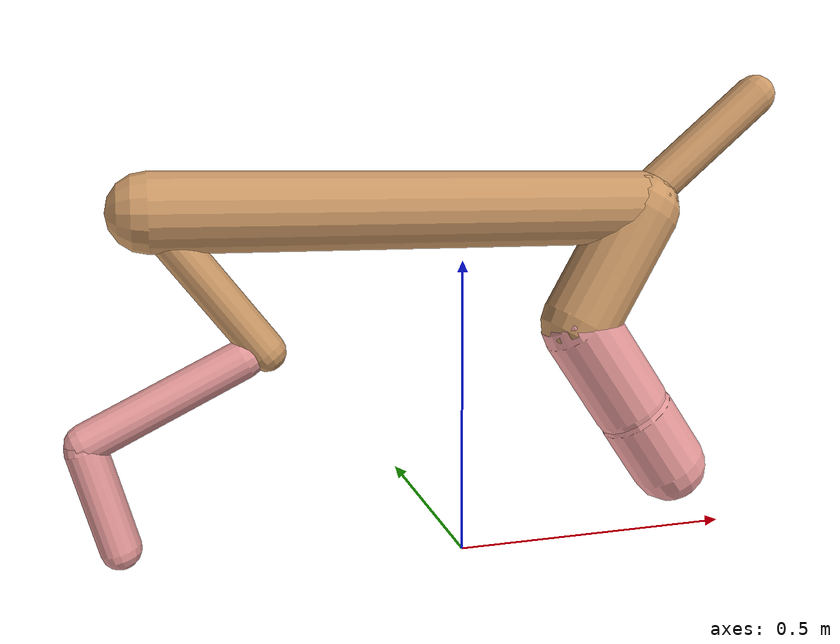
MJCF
<mujoco model="cheetah">
  <compiler angle="radian" coordinate="local" inertiafromgeom="true" settotalmass="14" />
  <default>
    <joint armature=".1" damping=".01" limited="true" solimplimit="0 .8 .03" solreflimit=".02 1" stiffness="8" />
    <geom conaffinity="0" condim="3" contype="1" friction="0.8 .1 .1" rgba="0.8 0.6 .4 1" solimp="0.0 0.8 0.01" solref="0.02 1" />
    <motor ctrllimited="true" ctrlrange="-1 1" />
  </default>
  <size nstack="300000" nuser_geom="1" />
  <option gravity="0 0 -9.81" timestep="0.01" />
  <worldbody>
    <body name="torso" pos="0.0 0.0 0.5862440196360936">
      <joint armature="0" axis="1 0 0" damping="0" limited="false" name="ignorex" pos="0 0 0" stiffness="0" type="slide" />
      <joint armature="0" axis="0 0 1" damping="0" limited="false" name="ignorez" pos="0 0 0" stiffness="0" type="slide" />
      <joint armature="0" axis="0 1 0" damping="0" limited="false" name="ignorey" pos="0 0 0" stiffness="0" type="hinge" />
      <geom fromto="-0.5 0.0 0.0 0.32895754666767796 0.0 0.0" name="torso" size="0.06358839717266364" type="capsule" />
      <geom axisangle="0 1 0 .87" name="head" pos="0.42895754666767794 0.0 0.1" size="0.036203274225471094 0.15" type="capsule" />

      <body name="bthigh" pos="-.5 0 0">
        <joint axis="0 1 0" damping="6" name="bthigh" pos="0 0 0" range="-.52 1.05" stiffness="240" type="hinge" />
        <geom axisangle="0 1 0 -3.8" name="bthigh" pos="0.09147716476768 0.0 -0.118920314197984" size="0.0322 0.1310215108874861" type="capsule" />
        <body name="bshin" pos="0.14295432953536 0.0 -0.227840628395968">
          <joint axis="0 1 0" damping="4.5" name="bshin" pos="0 0 0" range="-.785 .785" stiffness="180" type="hinge" />
          <geom axisangle="0 1 0 -2.03" name="bshin" pos="-0.12706613025724617 0.0 -0.06353306512862308" rgba="0.9 0.6 0.6 1" size="0.0322 0.13553949402153734" type="capsule" />
          <body name="bfoot" pos="-0.25413226051449234 0.0 -0.12706613025724617">
            <joint axis="0 1 0" damping="3" name="bfoot" pos="0 0 0" range="-.4 .785" stiffness="120" type="hinge" />
            <geom axisangle="0 1 0 -.27" name="bfoot" pos="0.027322477871277926 0.0 -0.0883426784504653" rgba="0.9 0.6 0.6 1" size="0.0322 0.0849380829201634" type="capsule" />
            <inertial mass="10" />
          </body>
        </body>
      </body>
      <body name="fthigh" pos="0.32895754666767796 0.0 0.0">
        <joint axis="0 1 0" damping="4.5" name="fthigh" pos="0 0 0" range="-1.5 0.8" stiffness="180" type="hinge" />
        <geom axisangle="0 1 0 .52" name="fthigh" pos="-0.05960045339358196 0.0 -0.10217220581756907" size="0.06842749144707568 0.11236069732209494" type="capsule" />
        <body name="fshin" pos="-0.11920090678716393 0.0 -0.20434441163513814">
          <joint axis="0 1 0" damping="3" name="fshin" pos="0 0 0" range="-1.2 1.1" stiffness="120" type="hinge" />
          <geom axisangle="0 1 0 -.6" name="fshin" pos="0.05536904980360988 0.0 -0.07666483818961367" rgba="0.9 0.6 0.6 1" size="0.06842749144707568 0.08955063094843657" type="capsule" />
          <body name="ffoot" pos="0.11073809960721975 0.0 -0.15332967637922734">
            <joint axis="0 1 0" damping="1.5" name="ffoot" pos="0 0 0" range="-3.1 -0.3" stiffness="60" type="hinge" />
            <geom axisangle="0 1 0 -.6" name="ffoot" pos="0.03912586336710832 0.0 -0.06086245412661295" rgba="0.9 0.6 0.6 1" size="0.06842749144707568 0.05913720911689208" type="capsule" />
            <inertial mass="10" />
          </body>
        </body>
      </body>
    </body>
  </worldbody>
  <actuator>
    <motor gear="120" joint="bthigh" name="bthigh" />
    <motor gear="90" joint="bshin" name="bshin" />
    <motor gear="60" joint="bfoot" name="bfoot" />
    <motor gear="120" joint="fthigh" name="fthigh" />
    <motor gear="60" joint="fshin" name="fshin" />
    <motor gear="30" joint="ffoot" name="ffoot" />
  </actuator>
</mujoco>
